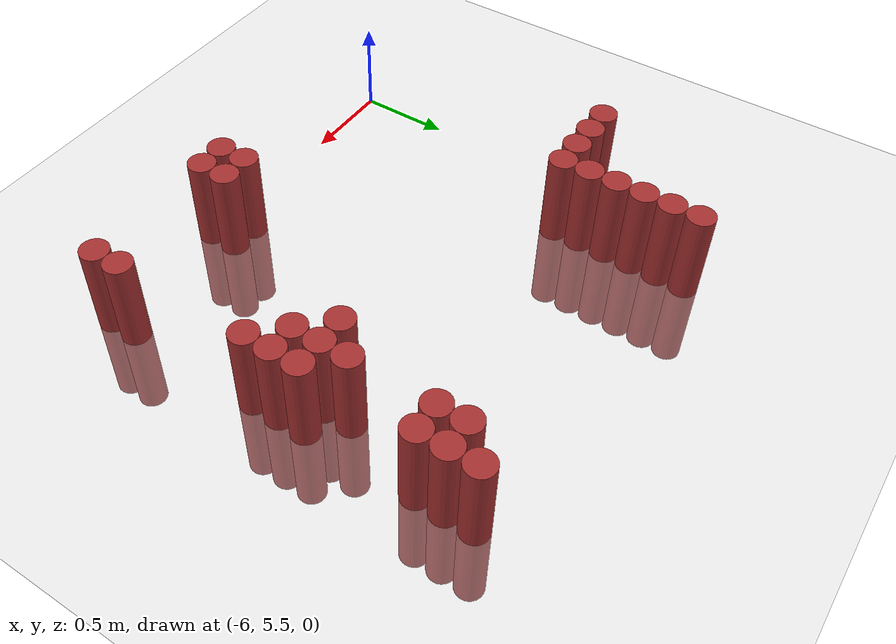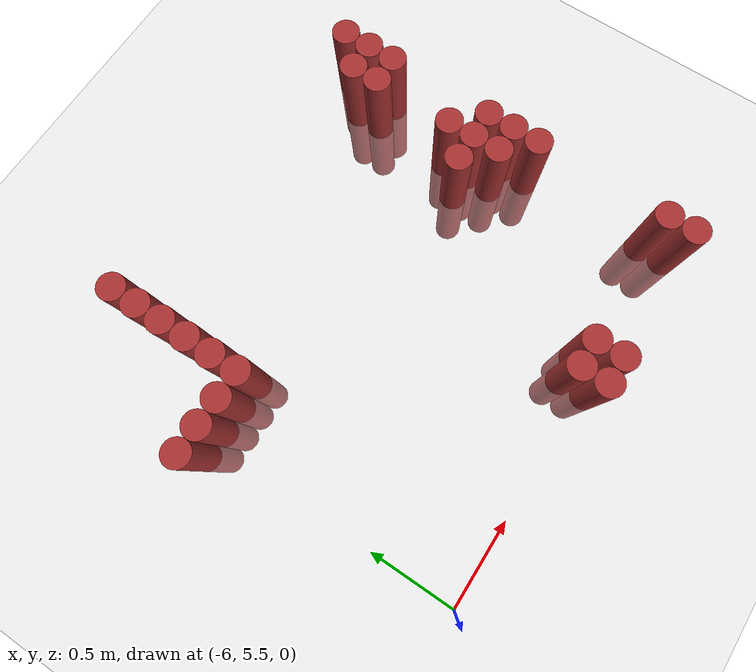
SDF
<sdf version="1.6">
 <world name="default">
  <model name="ground_plane">
   <static>1</static>
   <link name="link">
    <collision name="collision">
     <geometry><plane><normal>0 0 1</normal><size>100 100</size></plane></geometry>
     <surface><friction><ode><mu>100</mu><mu2>50</mu2></ode></friction></surface>
    </collision>
    <visual name="visual">
     <cast_shadows>0</cast_shadows>
     <geometry><plane><normal>0 0 1</normal><size>100 100</size></plane></geometry>
     <material>
      <script><uri>file://media/materials/scripts/gazebo.material</uri><name>Gazebo/Grey</name></script>
     </material>
    </visual>
   </link>
  </model>
  <model name="unit_cylinder_203">
   <static>1</static>
   <pose>-6.075000 6.975000 0.000000 0.000000 0.000000 0.000000</pose>
   <link name="link">
    <inertial>
     <mass>1</mass>
     <inertia><ixx>0.145833</ixx><ixy>0</ixy><ixz>0</ixz><iyy>0.145833</iyy><iyz>0</iyz><izz>0.125</izz></inertia>
    </inertial>
    <collision name="collision">
     <geometry><cylinder><radius>0.075000</radius><length>1</length></cylinder></geometry>
    </collision>
    <visual name="visual">
     <geometry><cylinder><radius>0.075000</radius><length>1</length></cylinder></geometry>
     <material>
      <ambient>0.648000 0.192000 0.192000 1</ambient>
      <diffuse>0.648000 0.192000 0.192000 1</diffuse>
     </material>
     <material>
      <script><name>Gazebo/Grey</name><uri>file://media/materials/scripts/gazebo.material</uri></script>
     </material>
    </visual>
   </link>
  </model>
  <model name="unit_cylinder_205">
   <static>1</static>
   <pose>-5.925000 6.975000 0.000000 0.000000 0.000000 0.000000</pose>
   <link name="link">
    <inertial>
     <mass>1</mass>
     <inertia><ixx>0.145833</ixx><ixy>0</ixy><ixz>0</ixz><iyy>0.145833</iyy><iyz>0</iyz><izz>0.125</izz></inertia>
    </inertial>
    <collision name="collision">
     <geometry><cylinder><radius>0.075000</radius><length>1</length></cylinder></geometry>
    </collision>
    <visual name="visual">
     <geometry><cylinder><radius>0.075000</radius><length>1</length></cylinder></geometry>
     <material>
      <ambient>0.648000 0.192000 0.192000 1</ambient>
      <diffuse>0.648000 0.192000 0.192000 1</diffuse>
     </material>
     <material>
      <script><name>Gazebo/Grey</name><uri>file://media/materials/scripts/gazebo.material</uri></script>
     </material>
    </visual>
   </link>
  </model>
  <model name="unit_cylinder_207">
   <static>1</static>
   <pose>-5.775000 6.975000 0.000000 0.000000 0.000000 0.000000</pose>
   <link name="link">
    <inertial>
     <mass>1</mass>
     <inertia><ixx>0.145833</ixx><ixy>0</ixy><ixz>0</ixz><iyy>0.145833</iyy><iyz>0</iyz><izz>0.125</izz></inertia>
    </inertial>
    <collision name="collision">
     <geometry><cylinder><radius>0.075000</radius><length>1</length></cylinder></geometry>
    </collision>
    <visual name="visual">
     <geometry><cylinder><radius>0.075000</radius><length>1</length></cylinder></geometry>
     <material>
      <ambient>0.648000 0.192000 0.192000 1</ambient>
      <diffuse>0.648000 0.192000 0.192000 1</diffuse>
     </material>
     <material>
      <script><name>Gazebo/Grey</name><uri>file://media/materials/scripts/gazebo.material</uri></script>
     </material>
    </visual>
   </link>
  </model>
  <model name="unit_cylinder_209">
   <static>1</static>
   <pose>-5.625000 6.975000 0.000000 0.000000 0.000000 0.000000</pose>
   <link name="link">
    <inertial>
     <mass>1</mass>
     <inertia><ixx>0.145833</ixx><ixy>0</ixy><ixz>0</ixz><iyy>0.145833</iyy><iyz>0</iyz><izz>0.125</izz></inertia>
    </inertial>
    <collision name="collision">
     <geometry><cylinder><radius>0.075000</radius><length>1</length></cylinder></geometry>
    </collision>
    <visual name="visual">
     <geometry><cylinder><radius>0.075000</radius><length>1</length></cylinder></geometry>
     <material>
      <ambient>0.648000 0.192000 0.192000 1</ambient>
      <diffuse>0.648000 0.192000 0.192000 1</diffuse>
     </material>
     <material>
      <script><name>Gazebo/Grey</name><uri>file://media/materials/scripts/gazebo.material</uri></script>
     </material>
    </visual>
   </link>
  </model>
  <model name="unit_cylinder_210">
   <static>1</static>
   <pose>-5.625000 7.125000 0.000000 0.000000 0.000000 0.000000</pose>
   <link name="link">
    <inertial>
     <mass>1</mass>
     <inertia><ixx>0.145833</ixx><ixy>0</ixy><ixz>0</ixz><iyy>0.145833</iyy><iyz>0</iyz><izz>0.125</izz></inertia>
    </inertial>
    <collision name="collision">
     <geometry><cylinder><radius>0.075000</radius><length>1</length></cylinder></geometry>
    </collision>
    <visual name="visual">
     <geometry><cylinder><radius>0.075000</radius><length>1</length></cylinder></geometry>
     <material>
      <ambient>0.648000 0.192000 0.192000 1</ambient>
      <diffuse>0.648000 0.192000 0.192000 1</diffuse>
     </material>
     <material>
      <script><name>Gazebo/Grey</name><uri>file://media/materials/scripts/gazebo.material</uri></script>
     </material>
    </visual>
   </link>
  </model>
  <model name="unit_cylinder_211">
   <static>1</static>
   <pose>-5.625000 7.275000 0.000000 0.000000 0.000000 0.000000</pose>
   <link name="link">
    <inertial>
     <mass>1</mass>
     <inertia><ixx>0.145833</ixx><ixy>0</ixy><ixz>0</ixz><iyy>0.145833</iyy><iyz>0</iyz><izz>0.125</izz></inertia>
    </inertial>
    <collision name="collision">
     <geometry><cylinder><radius>0.075000</radius><length>1</length></cylinder></geometry>
    </collision>
    <visual name="visual">
     <geometry><cylinder><radius>0.075000</radius><length>1</length></cylinder></geometry>
     <material>
      <ambient>0.648000 0.192000 0.192000 1</ambient>
      <diffuse>0.648000 0.192000 0.192000 1</diffuse>
     </material>
     <material>
      <script><name>Gazebo/Grey</name><uri>file://media/materials/scripts/gazebo.material</uri></script>
     </material>
    </visual>
   </link>
  </model>
  <model name="unit_cylinder_212">
   <static>1</static>
   <pose>-5.625000 7.425000 0.000000 0.000000 0.000000 0.000000</pose>
   <link name="link">
    <inertial>
     <mass>1</mass>
     <inertia><ixx>0.145833</ixx><ixy>0</ixy><ixz>0</ixz><iyy>0.145833</iyy><iyz>0</iyz><izz>0.125</izz></inertia>
    </inertial>
    <collision name="collision">
     <geometry><cylinder><radius>0.075000</radius><length>1</length></cylinder></geometry>
    </collision>
    <visual name="visual">
     <geometry><cylinder><radius>0.075000</radius><length>1</length></cylinder></geometry>
     <material>
      <ambient>0.648000 0.192000 0.192000 1</ambient>
      <diffuse>0.648000 0.192000 0.192000 1</diffuse>
     </material>
     <material>
      <script><name>Gazebo/Grey</name><uri>file://media/materials/scripts/gazebo.material</uri></script>
     </material>
    </visual>
   </link>
  </model>
  <model name="unit_cylinder_213">
   <static>1</static>
   <pose>-5.625000 7.575000 0.000000 0.000000 0.000000 0.000000</pose>
   <link name="link">
    <inertial>
     <mass>1</mass>
     <inertia><ixx>0.145833</ixx><ixy>0</ixy><ixz>0</ixz><iyy>0.145833</iyy><iyz>0</iyz><izz>0.125</izz></inertia>
    </inertial>
    <collision name="collision">
     <geometry><cylinder><radius>0.075000</radius><length>1</length></cylinder></geometry>
    </collision>
    <visual name="visual">
     <geometry><cylinder><radius>0.075000</radius><length>1</length></cylinder></geometry>
     <material>
      <ambient>0.648000 0.192000 0.192000 1</ambient>
      <diffuse>0.648000 0.192000 0.192000 1</diffuse>
     </material>
     <material>
      <script><name>Gazebo/Grey</name><uri>file://media/materials/scripts/gazebo.material</uri></script>
     </material>
    </visual>
   </link>
  </model>
  <model name="unit_cylinder_214">
   <static>1</static>
   <pose>-5.625000 7.725000 0.000000 0.000000 0.000000 0.000000</pose>
   <link name="link">
    <inertial>
     <mass>1</mass>
     <inertia><ixx>0.145833</ixx><ixy>0</ixy><ixz>0</ixz><iyy>0.145833</iyy><iyz>0</iyz><izz>0.125</izz></inertia>
    </inertial>
    <collision name="collision">
     <geometry><cylinder><radius>0.075000</radius><length>1</length></cylinder></geometry>
    </collision>
    <visual name="visual">
     <geometry><cylinder><radius>0.075000</radius><length>1</length></cylinder></geometry>
     <material>
      <ambient>0.648000 0.192000 0.192000 1</ambient>
      <diffuse>0.648000 0.192000 0.192000 1</diffuse>
     </material>
     <material>
      <script><name>Gazebo/Grey</name><uri>file://media/materials/scripts/gazebo.material</uri></script>
     </material>
    </visual>
   </link>
  </model>
  <model name="unit_cylinder_229">
   <static>1</static>
   <pose>-4.725000 5.475000 0.000000 0.000000 0.000000 0.000000</pose>
   <link name="link">
    <inertial>
     <mass>1</mass>
     <inertia><ixx>0.145833</ixx><ixy>0</ixy><ixz>0</ixz><iyy>0.145833</iyy><iyz>0</iyz><izz>0.125</izz></inertia>
    </inertial>
    <collision name="collision">
     <geometry><cylinder><radius>0.075000</radius><length>1</length></cylinder></geometry>
    </collision>
    <visual name="visual">
     <geometry><cylinder><radius>0.075000</radius><length>1</length></cylinder></geometry>
     <material>
      <ambient>0.648000 0.192000 0.192000 1</ambient>
      <diffuse>0.648000 0.192000 0.192000 1</diffuse>
     </material>
     <material>
      <script><name>Gazebo/Grey</name><uri>file://media/materials/scripts/gazebo.material</uri></script>
     </material>
    </visual>
   </link>
  </model>
  <model name="unit_cylinder_230">
   <static>1</static>
   <pose>-4.725000 5.625000 0.000000 0.000000 0.000000 0.000000</pose>
   <link name="link">
    <inertial>
     <mass>1</mass>
     <inertia><ixx>0.145833</ixx><ixy>0</ixy><ixz>0</ixz><iyy>0.145833</iyy><iyz>0</iyz><izz>0.125</izz></inertia>
    </inertial>
    <collision name="collision">
     <geometry><cylinder><radius>0.075000</radius><length>1</length></cylinder></geometry>
    </collision>
    <visual name="visual">
     <geometry><cylinder><radius>0.075000</radius><length>1</length></cylinder></geometry>
     <material>
      <ambient>0.648000 0.192000 0.192000 1</ambient>
      <diffuse>0.648000 0.192000 0.192000 1</diffuse>
     </material>
     <material>
      <script><name>Gazebo/Grey</name><uri>file://media/materials/scripts/gazebo.material</uri></script>
     </material>
    </visual>
   </link>
  </model>
  <model name="unit_cylinder_231">
   <static>1</static>
   <pose>-4.575000 5.475000 0.000000 0.000000 0.000000 0.000000</pose>
   <link name="link">
    <inertial>
     <mass>1</mass>
     <inertia><ixx>0.145833</ixx><ixy>0</ixy><ixz>0</ixz><iyy>0.145833</iyy><iyz>0</iyz><izz>0.125</izz></inertia>
    </inertial>
    <collision name="collision">
     <geometry><cylinder><radius>0.075000</radius><length>1</length></cylinder></geometry>
    </collision>
    <visual name="visual">
     <geometry><cylinder><radius>0.075000</radius><length>1</length></cylinder></geometry>
     <material>
      <ambient>0.648000 0.192000 0.192000 1</ambient>
      <diffuse>0.648000 0.192000 0.192000 1</diffuse>
     </material>
     <material>
      <script><name>Gazebo/Grey</name><uri>file://media/materials/scripts/gazebo.material</uri></script>
     </material>
    </visual>
   </link>
  </model>
  <model name="unit_cylinder_232">
   <static>1</static>
   <pose>-4.575000 5.625000 0.000000 0.000000 0.000000 0.000000</pose>
   <link name="link">
    <inertial>
     <mass>1</mass>
     <inertia><ixx>0.145833</ixx><ixy>0</ixy><ixz>0</ixz><iyy>0.145833</iyy><iyz>0</iyz><izz>0.125</izz></inertia>
    </inertial>
    <collision name="collision">
     <geometry><cylinder><radius>0.075000</radius><length>1</length></cylinder></geometry>
    </collision>
    <visual name="visual">
     <geometry><cylinder><radius>0.075000</radius><length>1</length></cylinder></geometry>
     <material>
      <ambient>0.648000 0.192000 0.192000 1</ambient>
      <diffuse>0.648000 0.192000 0.192000 1</diffuse>
     </material>
     <material>
      <script><name>Gazebo/Grey</name><uri>file://media/materials/scripts/gazebo.material</uri></script>
     </material>
    </visual>
   </link>
  </model>
  <model name="unit_cylinder_234">
   <static>1</static>
   <pose>-4.125000 6.675000 0.000000 0.000000 0.000000 0.000000</pose>
   <link name="link">
    <inertial>
     <mass>1</mass>
     <inertia><ixx>0.145833</ixx><ixy>0</ixy><ixz>0</ixz><iyy>0.145833</iyy><iyz>0</iyz><izz>0.125</izz></inertia>
    </inertial>
    <collision name="collision">
     <geometry><cylinder><radius>0.075000</radius><length>1</length></cylinder></geometry>
    </collision>
    <visual name="visual">
     <geometry><cylinder><radius>0.075000</radius><length>1</length></cylinder></geometry>
     <material>
      <ambient>0.648000 0.192000 0.192000 1</ambient>
      <diffuse>0.648000 0.192000 0.192000 1</diffuse>
     </material>
     <material>
      <script><name>Gazebo/Grey</name><uri>file://media/materials/scripts/gazebo.material</uri></script>
     </material>
    </visual>
   </link>
  </model>
  <model name="unit_cylinder_238">
   <static>1</static>
   <pose>-3.975000 6.525000 0.000000 0.000000 0.000000 0.000000</pose>
   <link name="link">
    <inertial>
     <mass>1</mass>
     <inertia><ixx>0.145833</ixx><ixy>0</ixy><ixz>0</ixz><iyy>0.145833</iyy><iyz>0</iyz><izz>0.125</izz></inertia>
    </inertial>
    <collision name="collision">
     <geometry><cylinder><radius>0.075000</radius><length>1</length></cylinder></geometry>
    </collision>
    <visual name="visual">
     <geometry><cylinder><radius>0.075000</radius><length>1</length></cylinder></geometry>
     <material>
      <ambient>0.648000 0.192000 0.192000 1</ambient>
      <diffuse>0.648000 0.192000 0.192000 1</diffuse>
     </material>
     <material>
      <script><name>Gazebo/Grey</name><uri>file://media/materials/scripts/gazebo.material</uri></script>
     </material>
    </visual>
   </link>
  </model>
  <model name="unit_cylinder_239">
   <static>1</static>
   <pose>-3.975000 6.675000 0.000000 0.000000 0.000000 0.000000</pose>
   <link name="link">
    <inertial>
     <mass>1</mass>
     <inertia><ixx>0.145833</ixx><ixy>0</ixy><ixz>0</ixz><iyy>0.145833</iyy><iyz>0</iyz><izz>0.125</izz></inertia>
    </inertial>
    <collision name="collision">
     <geometry><cylinder><radius>0.075000</radius><length>1</length></cylinder></geometry>
    </collision>
    <visual name="visual">
     <geometry><cylinder><radius>0.075000</radius><length>1</length></cylinder></geometry>
     <material>
      <ambient>0.648000 0.192000 0.192000 1</ambient>
      <diffuse>0.648000 0.192000 0.192000 1</diffuse>
     </material>
     <material>
      <script><name>Gazebo/Grey</name><uri>file://media/materials/scripts/gazebo.material</uri></script>
     </material>
    </visual>
   </link>
  </model>
  <model name="unit_cylinder_240">
   <static>1</static>
   <pose>-3.975000 6.825000 0.000000 0.000000 0.000000 0.000000</pose>
   <link name="link">
    <inertial>
     <mass>1</mass>
     <inertia><ixx>0.145833</ixx><ixy>0</ixy><ixz>0</ixz><iyy>0.145833</iyy><iyz>0</iyz><izz>0.125</izz></inertia>
    </inertial>
    <collision name="collision">
     <geometry><cylinder><radius>0.075000</radius><length>1</length></cylinder></geometry>
    </collision>
    <visual name="visual">
     <geometry><cylinder><radius>0.075000</radius><length>1</length></cylinder></geometry>
     <material>
      <ambient>0.648000 0.192000 0.192000 1</ambient>
      <diffuse>0.648000 0.192000 0.192000 1</diffuse>
     </material>
     <material>
      <script><name>Gazebo/Grey</name><uri>file://media/materials/scripts/gazebo.material</uri></script>
     </material>
    </visual>
   </link>
  </model>
  <model name="unit_cylinder_241">
   <static>1</static>
   <pose>-3.975000 7.275000 0.000000 0.000000 0.000000 0.000000</pose>
   <link name="link">
    <inertial>
     <mass>1</mass>
     <inertia><ixx>0.145833</ixx><ixy>0</ixy><ixz>0</ixz><iyy>0.145833</iyy><iyz>0</iyz><izz>0.125</izz></inertia>
    </inertial>
    <collision name="collision">
     <geometry><cylinder><radius>0.075000</radius><length>1</length></cylinder></geometry>
    </collision>
    <visual name="visual">
     <geometry><cylinder><radius>0.075000</radius><length>1</length></cylinder></geometry>
     <material>
      <ambient>0.648000 0.192000 0.192000 1</ambient>
      <diffuse>0.648000 0.192000 0.192000 1</diffuse>
     </material>
     <material>
      <script><name>Gazebo/Grey</name><uri>file://media/materials/scripts/gazebo.material</uri></script>
     </material>
    </visual>
   </link>
  </model>
  <model name="unit_cylinder_242">
   <static>1</static>
   <pose>-3.975000 7.425000 0.000000 0.000000 0.000000 0.000000</pose>
   <link name="link">
    <inertial>
     <mass>1</mass>
     <inertia><ixx>0.145833</ixx><ixy>0</ixy><ixz>0</ixz><iyy>0.145833</iyy><iyz>0</iyz><izz>0.125</izz></inertia>
    </inertial>
    <collision name="collision">
     <geometry><cylinder><radius>0.075000</radius><length>1</length></cylinder></geometry>
    </collision>
    <visual name="visual">
     <geometry><cylinder><radius>0.075000</radius><length>1</length></cylinder></geometry>
     <material>
      <ambient>0.648000 0.192000 0.192000 1</ambient>
      <diffuse>0.648000 0.192000 0.192000 1</diffuse>
     </material>
     <material>
      <script><name>Gazebo/Grey</name><uri>file://media/materials/scripts/gazebo.material</uri></script>
     </material>
    </visual>
   </link>
  </model>
  <model name="unit_cylinder_247">
   <static>1</static>
   <pose>-3.825000 5.475000 0.000000 0.000000 0.000000 0.000000</pose>
   <link name="link">
    <inertial>
     <mass>1</mass>
     <inertia><ixx>0.145833</ixx><ixy>0</ixy><ixz>0</ixz><iyy>0.145833</iyy><iyz>0</iyz><izz>0.125</izz></inertia>
    </inertial>
    <collision name="collision">
     <geometry><cylinder><radius>0.075000</radius><length>1</length></cylinder></geometry>
    </collision>
    <visual name="visual">
     <geometry><cylinder><radius>0.075000</radius><length>1</length></cylinder></geometry>
     <material>
      <ambient>0.648000 0.192000 0.192000 1</ambient>
      <diffuse>0.648000 0.192000 0.192000 1</diffuse>
     </material>
     <material>
      <script><name>Gazebo/Grey</name><uri>file://media/materials/scripts/gazebo.material</uri></script>
     </material>
    </visual>
   </link>
  </model>
  <model name="unit_cylinder_248">
   <static>1</static>
   <pose>-3.825000 5.625000 0.000000 0.000000 0.000000 0.000000</pose>
   <link name="link">
    <inertial>
     <mass>1</mass>
     <inertia><ixx>0.145833</ixx><ixy>0</ixy><ixz>0</ixz><iyy>0.145833</iyy><iyz>0</iyz><izz>0.125</izz></inertia>
    </inertial>
    <collision name="collision">
     <geometry><cylinder><radius>0.075000</radius><length>1</length></cylinder></geometry>
    </collision>
    <visual name="visual">
     <geometry><cylinder><radius>0.075000</radius><length>1</length></cylinder></geometry>
     <material>
      <ambient>0.648000 0.192000 0.192000 1</ambient>
      <diffuse>0.648000 0.192000 0.192000 1</diffuse>
     </material>
     <material>
      <script><name>Gazebo/Grey</name><uri>file://media/materials/scripts/gazebo.material</uri></script>
     </material>
    </visual>
   </link>
  </model>
  <model name="unit_cylinder_249">
   <static>1</static>
   <pose>-3.825000 6.375000 0.000000 0.000000 0.000000 0.000000</pose>
   <link name="link">
    <inertial>
     <mass>1</mass>
     <inertia><ixx>0.145833</ixx><ixy>0</ixy><ixz>0</ixz><iyy>0.145833</iyy><iyz>0</iyz><izz>0.125</izz></inertia>
    </inertial>
    <collision name="collision">
     <geometry><cylinder><radius>0.075000</radius><length>1</length></cylinder></geometry>
    </collision>
    <visual name="visual">
     <geometry><cylinder><radius>0.075000</radius><length>1</length></cylinder></geometry>
     <material>
      <ambient>0.648000 0.192000 0.192000 1</ambient>
      <diffuse>0.648000 0.192000 0.192000 1</diffuse>
     </material>
     <material>
      <script><name>Gazebo/Grey</name><uri>file://media/materials/scripts/gazebo.material</uri></script>
     </material>
    </visual>
   </link>
  </model>
  <model name="unit_cylinder_250">
   <static>1</static>
   <pose>-3.825000 6.525000 0.000000 0.000000 0.000000 0.000000</pose>
   <link name="link">
    <inertial>
     <mass>1</mass>
     <inertia><ixx>0.145833</ixx><ixy>0</ixy><ixz>0</ixz><iyy>0.145833</iyy><iyz>0</iyz><izz>0.125</izz></inertia>
    </inertial>
    <collision name="collision">
     <geometry><cylinder><radius>0.075000</radius><length>1</length></cylinder></geometry>
    </collision>
    <visual name="visual">
     <geometry><cylinder><radius>0.075000</radius><length>1</length></cylinder></geometry>
     <material>
      <ambient>0.648000 0.192000 0.192000 1</ambient>
      <diffuse>0.648000 0.192000 0.192000 1</diffuse>
     </material>
     <material>
      <script><name>Gazebo/Grey</name><uri>file://media/materials/scripts/gazebo.material</uri></script>
     </material>
    </visual>
   </link>
  </model>
  <model name="unit_cylinder_251">
   <static>1</static>
   <pose>-3.825000 6.675000 0.000000 0.000000 0.000000 0.000000</pose>
   <link name="link">
    <inertial>
     <mass>1</mass>
     <inertia><ixx>0.145833</ixx><ixy>0</ixy><ixz>0</ixz><iyy>0.145833</iyy><iyz>0</iyz><izz>0.125</izz></inertia>
    </inertial>
    <collision name="collision">
     <geometry><cylinder><radius>0.075000</radius><length>1</length></cylinder></geometry>
    </collision>
    <visual name="visual">
     <geometry><cylinder><radius>0.075000</radius><length>1</length></cylinder></geometry>
     <material>
      <ambient>0.648000 0.192000 0.192000 1</ambient>
      <diffuse>0.648000 0.192000 0.192000 1</diffuse>
     </material>
     <material>
      <script><name>Gazebo/Grey</name><uri>file://media/materials/scripts/gazebo.material</uri></script>
     </material>
    </visual>
   </link>
  </model>
  <model name="unit_cylinder_252">
   <static>1</static>
   <pose>-3.825000 7.275000 0.000000 0.000000 0.000000 0.000000</pose>
   <link name="link">
    <inertial>
     <mass>1</mass>
     <inertia><ixx>0.145833</ixx><ixy>0</ixy><ixz>0</ixz><iyy>0.145833</iyy><iyz>0</iyz><izz>0.125</izz></inertia>
    </inertial>
    <collision name="collision">
     <geometry><cylinder><radius>0.075000</radius><length>1</length></cylinder></geometry>
    </collision>
    <visual name="visual">
     <geometry><cylinder><radius>0.075000</radius><length>1</length></cylinder></geometry>
     <material>
      <ambient>0.648000 0.192000 0.192000 1</ambient>
      <diffuse>0.648000 0.192000 0.192000 1</diffuse>
     </material>
     <material>
      <script><name>Gazebo/Grey</name><uri>file://media/materials/scripts/gazebo.material</uri></script>
     </material>
    </visual>
   </link>
  </model>
  <model name="unit_cylinder_253">
   <static>1</static>
   <pose>-3.825000 7.425000 0.000000 0.000000 0.000000 0.000000</pose>
   <link name="link">
    <inertial>
     <mass>1</mass>
     <inertia><ixx>0.145833</ixx><ixy>0</ixy><ixz>0</ixz><iyy>0.145833</iyy><iyz>0</iyz><izz>0.125</izz></inertia>
    </inertial>
    <collision name="collision">
     <geometry><cylinder><radius>0.075000</radius><length>1</length></cylinder></geometry>
    </collision>
    <visual name="visual">
     <geometry><cylinder><radius>0.075000</radius><length>1</length></cylinder></geometry>
     <material>
      <ambient>0.648000 0.192000 0.192000 1</ambient>
      <diffuse>0.648000 0.192000 0.192000 1</diffuse>
     </material>
     <material>
      <script><name>Gazebo/Grey</name><uri>file://media/materials/scripts/gazebo.material</uri></script>
     </material>
    </visual>
   </link>
  </model>
  <model name="unit_cylinder_254">
   <static>1</static>
   <pose>-3.825000 7.575000 0.000000 0.000000 0.000000 0.000000</pose>
   <link name="link">
    <inertial>
     <mass>1</mass>
     <inertia><ixx>0.145833</ixx><ixy>0</ixy><ixz>0</ixz><iyy>0.145833</iyy><iyz>0</iyz><izz>0.125</izz></inertia>
    </inertial>
    <collision name="collision">
     <geometry><cylinder><radius>0.075000</radius><length>1</length></cylinder></geometry>
    </collision>
    <visual name="visual">
     <geometry><cylinder><radius>0.075000</radius><length>1</length></cylinder></geometry>
     <material>
      <ambient>0.648000 0.192000 0.192000 1</ambient>
      <diffuse>0.648000 0.192000 0.192000 1</diffuse>
     </material>
     <material>
      <script><name>Gazebo/Grey</name><uri>file://media/materials/scripts/gazebo.material</uri></script>
     </material>
    </visual>
   </link>
  </model>
 </world>
</sdf>
